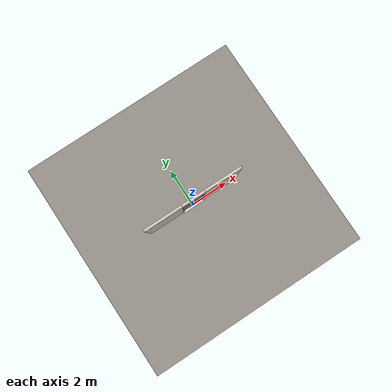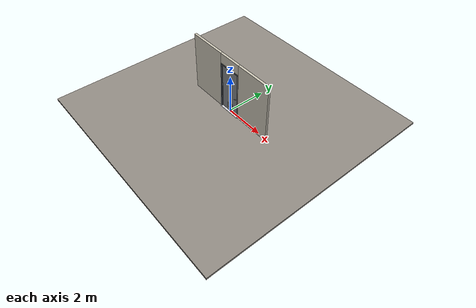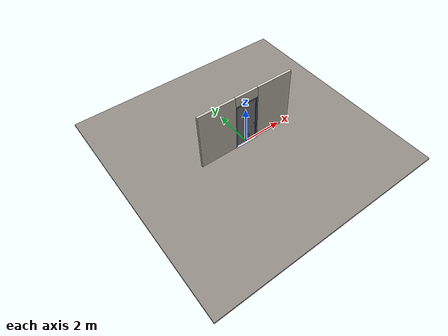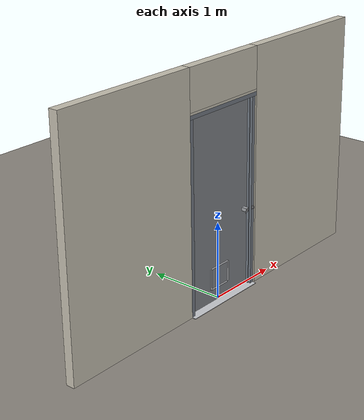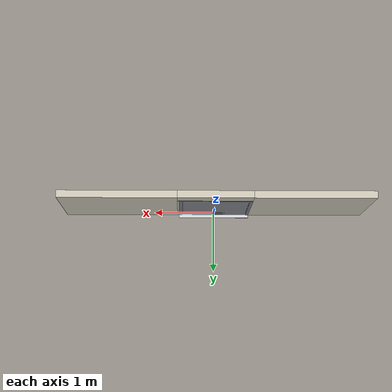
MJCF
<?xml version="1.0" ?>
<mujoco model="db0305_swing_single_full">
  <compiler angle="radian" meshdir="../../hardware" texturedir="../../textures" autolimits="true" inertiafromgeom="false"/>
  <option timestep="0.002" integrator="implicitfast" cone="elliptic" impratio="10" noslip_iterations="3">
    <flag multiccd="enable"/>
  </option>
  <size memory="16M"/>
  <default>
    <geom condim="4" solref="0.005 1" solimp="0.95 0.99 0.001"/>
    <joint solreflimit="0.005 1" solimplimit="0.95 0.99 0.001"/>
    <tendon solreflimit="0.005 1"/>
    <equality solref="0.002 1"/>
  </default>
  <visual>
    <headlight ambient="0.4 0.4 0.4" diffuse="0.7 0.7 0.7" specular="0.2 0.2 0.2"/>
    <quality shadowsize="4096"/>
    <map znear="0.01" zfar="60"/>
  </visual>
  <asset>
    <mesh name="hinge_e22b26c0c1" file="hinge_e22b26c0c1.obj"/>
    <mesh name="hinge_jamb_e1d088f8dc" file="hinge_jamb_e1d088f8dc.obj"/>
    <material name="mat_floor" rgba="0.55 0.53 0.5 1" specular="0.2" shininess="0.15" reflectance="0"/>
    <material name="mat_wall" rgba="0.78 0.76 0.7 1" specular="0.2" shininess="0.1" reflectance="0"/>
    <material name="mat_leaf" rgba="0.5 0.51 0.53 1" specular="0.23" shininess="0.51" reflectance="0.02"/>
    <material name="mat_hinge" rgba="0.65 0.66 0.68 1" specular="0.74" shininess="0.5" reflectance="0.36"/>
    <material name="mat_op_steel_galvanized" rgba="0.65 0.66 0.68 1" specular="0.74" shininess="0.5" reflectance="0.36"/>
    <material name="mat_padlock" rgba="0.85 0.66 0.3 1" specular="0.8" shininess="0.75" reflectance="0.4"/>
    <material name="mat_frame" rgba="0.45 0.48 0.52 1" specular="0.32" shininess="0.6" reflectance="0.08"/>
    <material name="mat_seal" rgba="0.1 0.1 0.1 1" specular="0.2" shininess="0.1" reflectance="0"/>
    <material name="mat_threshold" rgba="0.8 0.81 0.83 1" specular="0.8" shininess="0.6" reflectance="0.4"/>
    <material name="mat_vent" rgba="0.8 0.81 0.83 1" specular="0.8" shininess="0.6" reflectance="0.4"/>
    <texture name="skybox" type="skybox" builtin="gradient" rgb1="0.6 0.7 0.85" rgb2="0.9 0.92 0.95" width="256" height="256"/>
  </asset>
  <worldbody>
    <light name="sun" pos="1.5 -2.5 4" dir="-0.3 0.5 -0.8" directional="true" diffuse="0.8 0.8 0.8" specular="0.3 0.3 0.3" castshadow="true"/>
    <light name="fill" pos="-1.5 2.5 3" dir="0.3 -0.5 -0.7" directional="true" diffuse="0.35 0.35 0.4" castshadow="false"/>
    <camera name="robot_view" pos="0 -2.951313 2.043887" xyaxes="1 0 0 0 0.26963 0.962964" fovy="52"/>
    <camera name="far_view" pos="0 2.894312 2.043887" xyaxes="-1 0 0 0 -0.26963 0.962964" fovy="52"/>
    <camera name="iso" pos="2.221337 -2.483663 2.511538" xyaxes="0.741536 0.670913 0 -0.242917 0.268487 0.932151" fovy="46"/>
    <camera name="detail_handle" pos="0.747 -0.9 1.32" xyaxes="0.97561 0.219512 0 -0.070934 0.315262 0.94635" fovy="38"/>
    <geom name="floor" type="box" size="6 6 0.05" pos="0 0 -0.05" material="mat_floor" group="0" contype="1" conaffinity="1" friction="0.8 0.005 0.0001" density="2400"/>
    <geom name="wall_left" type="box" size="0.9565 0.0575 1.5255" pos="-1.5435 -0.0285 1.5255" material="mat_wall" group="0" contype="1" conaffinity="1" friction="0.6 0.005 0.0001" density="800"/>
    <geom name="wall_right" type="box" size="0.9415 0.0575 1.5255" pos="1.5585 -0.0285 1.5255" material="mat_wall" group="0" contype="1" conaffinity="1" friction="0.6 0.005 0.0001" density="800"/>
    <geom name="wall_header" type="box" size="0.602 0.0575 0.26" pos="0.015 -0.0285 2.791" material="mat_wall" group="0" contype="1" conaffinity="1" friction="0.6 0.005 0.0001" density="800"/>
    <geom name="hinge_0_jamb" type="mesh" mesh="hinge_jamb_e1d088f8dc" pos="-0.534 0.029 0.259" quat="0 1 0 0" material="mat_hinge" group="1" contype="0" conaffinity="0" density="7850"/>
    <geom name="hinge_1_jamb" type="mesh" mesh="hinge_jamb_e1d088f8dc" pos="-0.534 0.029 1.228" quat="0 1 0 0" material="mat_hinge" group="1" contype="0" conaffinity="0" density="7850"/>
    <geom name="hinge_2_jamb" type="mesh" mesh="hinge_jamb_e1d088f8dc" pos="-0.534 0.029 2.267" quat="0 1 0 0" material="mat_hinge" group="1" contype="0" conaffinity="0" density="7850"/>
    <geom name="leaf_staple_leg_n" type="box" size="0.003 0.0025 0.013" pos="0.565 -0.099 1.0275" quat="0.707107 0.707107 0 0" material="mat_op_steel_galvanized" group="0" contype="1" conaffinity="1" friction="0.6 0.005 0.0001" density="7800"/>
    <geom name="leaf_staple_leg_p" type="box" size="0.003 0.0025 0.013" pos="0.565 -0.099 1.0525" quat="0.707107 0.707107 0 0" material="mat_op_steel_galvanized" group="0" contype="1" conaffinity="1" friction="0.6 0.005 0.0001" density="7800"/>
    <geom name="leaf_staple_bridge" type="box" size="0.003 0.015 0.0025" pos="0.565 -0.1095 1.04" quat="0.707107 0.707107 0 0" material="mat_op_steel_galvanized" group="0" contype="1" conaffinity="1" friction="0.6 0.005 0.0001" density="7800"/>
    <geom name="leaf_staple_base" type="box" size="0.016 0.021 0.001" pos="0.565 -0.087 1.04" quat="0.707107 0.707107 0 0" material="mat_op_steel_galvanized" group="1" contype="0" conaffinity="0" density="7800"/>
    <geom name="jamb_hinge" type="box" size="0.025 0.0575 1.2255" pos="-0.562 -0.0285 1.2255" material="mat_frame" group="0" contype="1" conaffinity="1" friction="0.6 0.005 0.0001" density="300"/>
    <geom name="jamb_strike" type="box" size="0.025 0.0575 1.2255" pos="0.562 -0.0285 1.2255" material="mat_frame" group="0" contype="1" conaffinity="1" friction="0.6 0.005 0.0001" density="300"/>
    <geom name="stud_strike" type="box" size="0.015 0.0575 1.2255" pos="0.602 -0.0285 1.2255" material="mat_wall" group="0" contype="1" conaffinity="1" friction="0.6 0.005 0.0001" density="500"/>
    <geom name="jamb_head" type="box" size="0.602 0.0575 0.025" pos="0.015 -0.0285 2.476" material="mat_frame" group="0" contype="1" conaffinity="1" friction="0.6 0.005 0.0001" density="300"/>
    <geom name="head_stud" type="box" size="0.602 0.0575 0.015" pos="0.015 -0.0285 2.516" material="mat_wall" group="0" contype="1" conaffinity="1" friction="0.6 0.005 0.0001" density="500"/>
    <geom name="stop_hinge" type="box" size="0.0055 0.016 1.2255" pos="-0.5315 -0.0385 1.2255" material="mat_frame" group="0" contype="1" conaffinity="1" friction="0.6 0.005 0.0001" density="300"/>
    <geom name="stop_strike" type="box" size="0.0055 0.016 1.2255" pos="0.5315 -0.0385 1.2255" material="mat_frame" group="0" contype="1" conaffinity="1" friction="0.6 0.005 0.0001" density="300"/>
    <geom name="stop_head" type="box" size="0.537 0.016 0.0055" pos="0 -0.0385 2.4455" material="mat_frame" group="0" contype="1" conaffinity="1" friction="0.6 0.005 0.0001" density="300"/>
    <geom name="seal_hinge" type="box" size="0.004 0.002 1.2255" pos="-0.534 -0.024 1.2255" material="mat_seal" group="1" contype="0" conaffinity="0" density="1100"/>
    <geom name="seal_strike" type="box" size="0.004 0.002 1.2255" pos="0.534 -0.024 1.2255" material="mat_seal" group="1" contype="0" conaffinity="0" density="1100"/>
    <geom name="seal_head" type="box" size="0.517 0.002 0.008" pos="0 -0.024 2.439" material="mat_seal" group="1" contype="0" conaffinity="0" density="1100"/>
    <geom name="threshold" type="box" size="0.587 0.1075 0.004" pos="0 -0.0285 0.004" material="mat_threshold" group="0" contype="1" conaffinity="1" friction="0.6 0.005 0.0001" density="2700"/>
    <site name="approach_point" pos="0 -1.5 0" quat="1 0 0 0" size="0.05" rgba="0.2 0.9 0.2 0.5" group="4"/>
    <site name="goal_point" pos="0 1.5 0" quat="1 0 0 0" size="0.05" rgba="0.2 0.9 0.2 0.5" group="4"/>
    <site name="door_plane_center" pos="0 0 1.2255" quat="1 0 0 0" size="0.02" rgba="0.2 0.9 0.2 0.5" group="4"/>
    <body name="leaf" pos="-0.537 0 0">
      <inertial pos="0.537875 -0.000573 1.214579" mass="83.663752" quat="-0.498105 0.500375 0.499753 0.501759" diaginertia="8.132267557 41.429741076 49.527138635"/>
      <joint name="leaf_hinge" type="hinge" axis="0 0 1" pos="0.003 0.029 0" limited="true" range="0 1.919862" solreflimit="0.02 1" damping="0.620702" frictionloss="1.862093" armature="0.02"/>
      <geom name="leaf_slab" type="box" size="0.5335 0.022 1.219" pos="0.5365 0 1.228" material="mat_leaf" group="0" contype="1" conaffinity="1" friction="0.4 0.005 0.0001" density="1"/>
      <geom name="hinge_0" type="mesh" mesh="hinge_e22b26c0c1" pos="0.003 0.029 0.259" quat="0 1 0 0" material="mat_hinge" group="1" contype="0" conaffinity="0" density="7850"/>
      <geom name="hinge_1" type="mesh" mesh="hinge_e22b26c0c1" pos="0.003 0.029 1.228" quat="0 1 0 0" material="mat_hinge" group="1" contype="0" conaffinity="0" density="7850"/>
      <geom name="hinge_2" type="mesh" mesh="hinge_e22b26c0c1" pos="0.003 0.029 2.267" quat="0 1 0 0" material="mat_hinge" group="1" contype="0" conaffinity="0" density="7850"/>
      <geom name="leaf_hasp_plate" type="box" size="0.024 0.0215 0.034" pos="0.995 -0.056 1.04" quat="0.707107 0.707107 0 0" material="mat_op_steel_galvanized" group="1" contype="0" conaffinity="0" density="7800"/>
      <geom name="louver_vent_stile_n_l" type="box" size="0.012 0.002 0.137" pos="0.3745 -0.024 0.314" material="mat_vent" group="2" contype="0" conaffinity="0" density="2700"/>
      <geom name="louver_vent_stile_n_r" type="box" size="0.012 0.002 0.137" pos="0.6985 -0.024 0.314" material="mat_vent" group="2" contype="0" conaffinity="0" density="2700"/>
      <geom name="louver_vent_rail_n_b" type="box" size="0.15 0.002 0.012" pos="0.5365 -0.024 0.177" material="mat_vent" group="2" contype="0" conaffinity="0" density="2700"/>
      <geom name="louver_vent_rail_n_t" type="box" size="0.15 0.002 0.012" pos="0.5365 -0.024 0.451" material="mat_vent" group="2" contype="0" conaffinity="0" density="2700"/>
      <geom name="louver_vent_stile_p_l" type="box" size="0.012 0.002 0.137" pos="0.3745 0.024 0.314" material="mat_vent" group="2" contype="0" conaffinity="0" density="2700"/>
      <geom name="louver_vent_stile_p_r" type="box" size="0.012 0.002 0.137" pos="0.6985 0.024 0.314" material="mat_vent" group="2" contype="0" conaffinity="0" density="2700"/>
      <geom name="louver_vent_rail_p_b" type="box" size="0.15 0.002 0.012" pos="0.5365 0.024 0.177" material="mat_vent" group="2" contype="0" conaffinity="0" density="2700"/>
      <geom name="louver_vent_rail_p_t" type="box" size="0.15 0.002 0.012" pos="0.5365 0.024 0.451" material="mat_vent" group="2" contype="0" conaffinity="0" density="2700"/>
      <geom name="louver_vent_slat_0" type="box" size="0.15 0.0015 0.015" pos="0.5365 0 0.209833" quat="0.965926 -0.258819 0 0" material="mat_vent" group="2" contype="0" conaffinity="0" density="2700"/>
      <geom name="louver_vent_slat_1" type="box" size="0.15 0.0015 0.015" pos="0.5365 0 0.2515" quat="0.965926 -0.258819 0 0" material="mat_vent" group="2" contype="0" conaffinity="0" density="2700"/>
      <geom name="louver_vent_slat_2" type="box" size="0.15 0.0015 0.015" pos="0.5365 0 0.293167" quat="0.965926 -0.258819 0 0" material="mat_vent" group="2" contype="0" conaffinity="0" density="2700"/>
      <geom name="louver_vent_slat_3" type="box" size="0.15 0.0015 0.015" pos="0.5365 0 0.334833" quat="0.965926 -0.258819 0 0" material="mat_vent" group="2" contype="0" conaffinity="0" density="2700"/>
      <geom name="louver_vent_slat_4" type="box" size="0.15 0.0015 0.015" pos="0.5365 0 0.3765" quat="0.965926 -0.258819 0 0" material="mat_vent" group="2" contype="0" conaffinity="0" density="2700"/>
      <geom name="louver_vent_slat_5" type="box" size="0.15 0.0015 0.015" pos="0.5365 0 0.418167" quat="0.965926 -0.258819 0 0" material="mat_vent" group="2" contype="0" conaffinity="0" density="2700"/>
      <site name="leaf_edge_mid" pos="1.07 0 1.219" quat="1 0 0 0" size="0.02" rgba="0.2 0.9 0.2 0.5" group="4"/>
      <body name="leaf_hasp" pos="1.015 -0.09 1.04">
        <inertial pos="-0.042059 -0.012847 0" mass="0.110745" quat="0.695779 -0.695779 -0.126064 0.126064" diaginertia="0.000012666 0.000140194 0.000152371"/>
        <joint name="leaf_hasp_hinge" type="hinge" axis="0 0 -1" limited="true" range="0 2.9" damping="0.02" frictionloss="0.05" armature="0.005" ref="2.8"/>
        <geom name="leaf_hasp_strap" type="box" size="0.0545 0.0175 0.0015" pos="-0.051854 -0.016844 0" quat="0.120185 0.120185 -0.696818 -0.696818" material="mat_op_steel_galvanized" group="0" contype="1" conaffinity="1" friction="0.6 0.005 0.0001" density="7800"/>
        <geom name="leaf_hasp_knuckle" type="cylinder" size="0.0045 0.0215" pos="-0.00134 0.003769 0" quat="0 0.169967 -0.98545 0" material="mat_op_steel_galvanized" group="1" contype="0" conaffinity="0" density="7850"/>
        <site name="leaf_hasp_grip" pos="-0.087208 -0.020392 0" quat="0.169967 0 0 -0.98545" size="0.01" rgba="0.2 0.9 0.2 0.5" group="4"/>
      </body>
    </body>
  </worldbody>
  <sensor>
    <jointpos name="leaf_hinge_pos" joint="leaf_hinge"/>
    <jointvel name="leaf_hinge_vel" joint="leaf_hinge"/>
    <jointpos name="leaf_hasp_hinge_pos" joint="leaf_hasp_hinge"/>
    <jointvel name="leaf_hasp_hinge_vel" joint="leaf_hasp_hinge"/>
  </sensor>
</mujoco>
